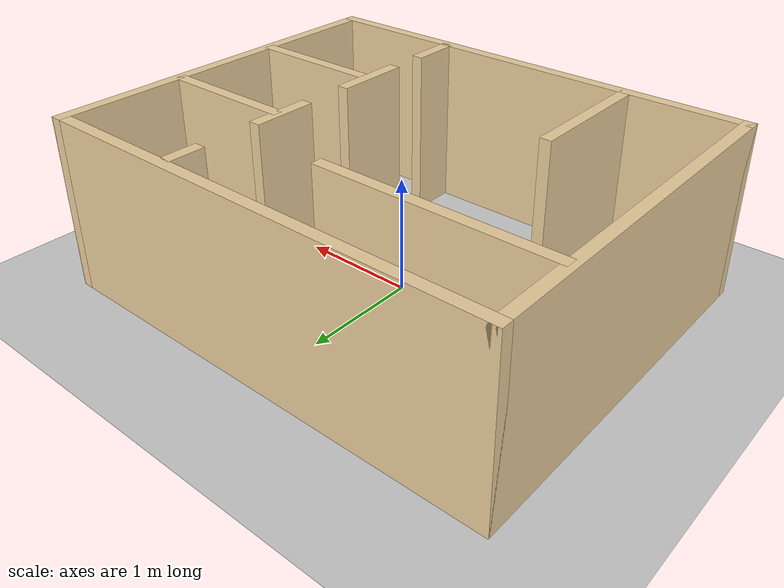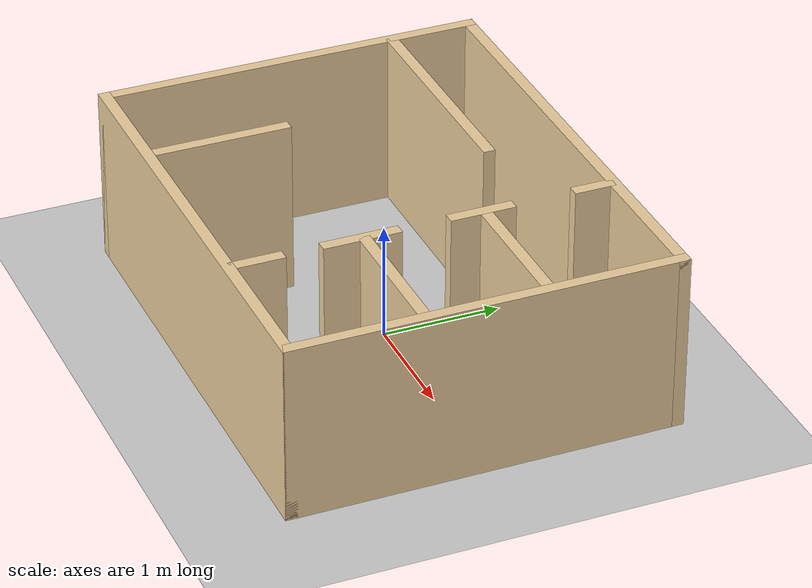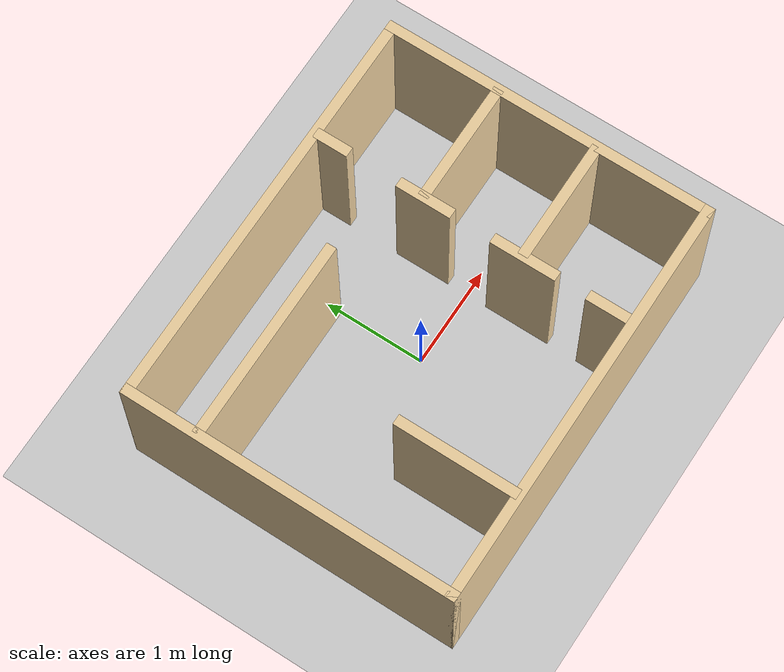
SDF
<?xml version="1.0"?>
<sdf version="1.8">
  <world name="maze_world">

    <plugin
      filename="gz-sim-physics-system"
      name="gz::sim::systems::Physics">
    </plugin>
    <plugin
      filename="gz-sim-user-commands-system"
      name="gz::sim::systems::UserCommands">
    </plugin>
    <plugin
      filename="gz-sim-scene-broadcaster-system"
      name="gz::sim::systems::SceneBroadcaster">
    </plugin>
    <plugin
      filename="gz-sim-sensors-system"
      name="gz::sim::systems::Sensors">
      <render_engine>ogre2</render_engine>
    </plugin>
    <plugin
      filename="gz-sim-imu-system"
      name="gz::sim::systems::Imu">
    </plugin>

    <physics type="ode">
      <real_time_update_rate>1000.0</real_time_update_rate>
      <max_step_size>0.001</max_step_size>
      <real_time_factor>1</real_time_factor>
      <ode>
        <solver>
          <type>quick</type>
          <iters>150</iters>
          <precon_iters>0</precon_iters>
          <sor>1.400000</sor>
          <use_dynamic_moi_rescaling>1</use_dynamic_moi_rescaling>
        </solver>
        <constraints>
          <cfm>0.00001</cfm>
          <erp>0.2</erp>
          <contact_max_correcting_vel>2000.000000</contact_max_correcting_vel>
          <contact_surface_layer>0.01000</contact_surface_layer>
        </constraints>
      </ode>
    </physics>

    <!-- The ground plane is written out here so the world starts with no network.
         The course maze generator wrote a Fuel include for it, which needs a download
         on the first run. -->
    <model name="ground_plane">
      <static>true</static>
      <link name="link">
        <collision name="collision">
          <geometry><plane><normal>0 0 1</normal><size>100 100</size></plane></geometry>
        </collision>
        <visual name="visual">
          <geometry><plane><normal>0 0 1</normal><size>100 100</size></plane></geometry>
          <material>
            <ambient>0.8 0.8 0.8 1</ambient>
            <diffuse>0.8 0.8 0.8 1</diffuse>
          </material>
        </visual>
      </link>
    </model>

    <model name="maze">
      <pose>0 0 0 0 0 0</pose>
		  <link name='Wall_0'>
		    <collision name='Wall_0_Collision'>
		      <geometry><box><size>4.1 0.1 1.5</size></box></geometry>
		      <pose>0 0 0.75 0 -0 0</pose>
		    </collision>
		    <visual name='Wall_0_Visual'>
		      <pose>0 0 0.75 0 -0 0</pose>
		      <geometry><box><size>4.1 0.1 1.5</size></box></geometry>
		      <material>
		        <diffuse>0.921569 0.807843 0.615686 1</diffuse>
		        <ambient>0.921569 0.807843 0.615686 1</ambient>
		      </material>
		    </visual>
		    <pose>0.0 1.6 0 0 -0 0</pose>
		  </link>
		  <link name='Wall_1'>
		    <collision name='Wall_1_Collision'>
		      <geometry><box><size>4.1 0.1 1.5</size></box></geometry>
		      <pose>0 0 0.75 0 -0 0</pose>
		    </collision>
		    <visual name='Wall_1_Visual'>
		      <pose>0 0 0.75 0 -0 0</pose>
		      <geometry><box><size>4.1 0.1 1.5</size></box></geometry>
		      <material>
		        <diffuse>0.921569 0.807843 0.615686 1</diffuse>
		        <ambient>0.921569 0.807843 0.615686 1</ambient>
		      </material>
		    </visual>
		    <pose>0.0 -1.6 0 0 -0 0</pose>
		  </link>
		  <link name='Wall_2'>
		    <collision name='Wall_2_Collision'>
		      <geometry><box><size>0.1 3.3 1.5</size></box></geometry>
		      <pose>0 0 0.75 0 -0 0</pose>
		    </collision>
		    <visual name='Wall_2_Visual'>
		      <pose>0 0 0.75 0 -0 0</pose>
		      <geometry><box><size>0.1 3.3 1.5</size></box></geometry>
		      <material>
		        <diffuse>0.921569 0.807843 0.615686 1</diffuse>
		        <ambient>0.921569 0.807843 0.615686 1</ambient>
		      </material>
		    </visual>
		    <pose>-2.0 0.0 0 0 -0 0</pose>
		  </link>
		  <link name='Wall_3'>
		    <collision name='Wall_3_Collision'>
		      <geometry><box><size>0.1 3.3 1.5</size></box></geometry>
		      <pose>0 0 0.75 0 -0 0</pose>
		    </collision>
		    <visual name='Wall_3_Visual'>
		      <pose>0 0 0.75 0 -0 0</pose>
		      <geometry><box><size>0.1 3.3 1.5</size></box></geometry>
		      <material>
		        <diffuse>0.921569 0.807843 0.615686 1</diffuse>
		        <ambient>0.921569 0.807843 0.615686 1</ambient>
		      </material>
		    </visual>
		    <pose>2.0 0.0 0 0 -0 0</pose>
		  </link>
		  <link name='Wall_4'>
		    <collision name='Wall_4_Collision'>
		      <geometry><box><size>0.1 0.45 1.5</size></box></geometry>
		      <pose>0 0 0.75 0 -0 0</pose>
		    </collision>
		    <visual name='Wall_4_Visual'>
		      <pose>0 0 0.75 0 -0 0</pose>
		      <geometry><box><size>0.1 0.45 1.5</size></box></geometry>
		      <material>
		        <diffuse>0.921569 0.807843 0.615686 1</diffuse>
		        <ambient>0.921569 0.807843 0.615686 1</ambient>
		      </material>
		    </visual>
		    <pose>0.8 -1.375 0 0 -0 0</pose>
		  </link>
		  <link name='Wall_5'>
		    <collision name='Wall_5_Collision'>
		      <geometry><box><size>0.1 0.65 1.5</size></box></geometry>
		      <pose>0 0 0.75 0 -0 0</pose>
		    </collision>
		    <visual name='Wall_5_Visual'>
		      <pose>0 0 0.75 0 -0 0</pose>
		      <geometry><box><size>0.1 0.65 1.5</size></box></geometry>
		      <material>
		        <diffuse>0.921569 0.807843 0.615686 1</diffuse>
		        <ambient>0.921569 0.807843 0.615686 1</ambient>
		      </material>
		    </visual>
		    <pose>0.8 -0.525 0 0 -0 0</pose>
		  </link>
		  <link name='Wall_6'>
		    <collision name='Wall_6_Collision'>
		      <geometry><box><size>0.1 0.55 1.5</size></box></geometry>
		      <pose>0 0 0.75 0 -0 0</pose>
		    </collision>
		    <visual name='Wall_6_Visual'>
		      <pose>0 0 0.75 0 -0 0</pose>
		      <geometry><box><size>0.1 0.55 1.5</size></box></geometry>
		      <material>
		        <diffuse>0.921569 0.807843 0.615686 1</diffuse>
		        <ambient>0.921569 0.807843 0.615686 1</ambient>
		      </material>
		    </visual>
		    <pose>0.8 0.475 0 0 -0 0</pose>
		  </link>
		  <link name='Wall_7'>
		    <collision name='Wall_7_Collision'>
		      <geometry><box><size>0.1 0.35 1.5</size></box></geometry>
		      <pose>0 0 0.75 0 -0 0</pose>
		    </collision>
		    <visual name='Wall_7_Visual'>
		      <pose>0 0 0.75 0 -0 0</pose>
		      <geometry><box><size>0.1 0.35 1.5</size></box></geometry>
		      <material>
		        <diffuse>0.921569 0.807843 0.615686 1</diffuse>
		        <ambient>0.921569 0.807843 0.615686 1</ambient>
		      </material>
		    </visual>
		    <pose>0.8 1.425 0 0 -0 0</pose>
		  </link>
		  <link name='Wall_8'>
		    <collision name='Wall_8_Collision'>
		      <geometry><box><size>1.2 0.1 1.5</size></box></geometry>
		      <pose>0 0 0.75 0 -0 0</pose>
		    </collision>
		    <visual name='Wall_8_Visual'>
		      <pose>0 0 0.75 0 -0 0</pose>
		      <geometry><box><size>1.2 0.1 1.5</size></box></geometry>
		      <material>
		        <diffuse>0.921569 0.807843 0.615686 1</diffuse>
		        <ambient>0.921569 0.807843 0.615686 1</ambient>
		      </material>
		    </visual>
		    <pose>1.4 0.5 0 0 -0 0</pose>
		  </link>
		  <link name='Wall_9'>
		    <collision name='Wall_9_Collision'>
		      <geometry><box><size>1.2 0.1 1.5</size></box></geometry>
		      <pose>0 0 0.75 0 -0 0</pose>
		    </collision>
		    <visual name='Wall_9_Visual'>
		      <pose>0 0 0.75 0 -0 0</pose>
		      <geometry><box><size>1.2 0.1 1.5</size></box></geometry>
		      <material>
		        <diffuse>0.921569 0.807843 0.615686 1</diffuse>
		        <ambient>0.921569 0.807843 0.615686 1</ambient>
		      </material>
		    </visual>
		    <pose>1.4 -0.5 0 0 -0 0</pose>
		  </link>
		  <link name='Wall_10'>
		    <collision name='Wall_10_Collision'>
		      <geometry><box><size>2.0 0.1 1.5</size></box></geometry>
		      <pose>0 0 0.75 0 -0 0</pose>
		    </collision>
		    <visual name='Wall_10_Visual'>
		      <pose>0 0 0.75 0 -0 0</pose>
		      <geometry><box><size>2.0 0.1 1.5</size></box></geometry>
		      <material>
		        <diffuse>0.921569 0.807843 0.615686 1</diffuse>
		        <ambient>0.921569 0.807843 0.615686 1</ambient>
		      </material>
		    </visual>
		    <pose>-1.0 0.9 0 0 -0 0</pose>
		  </link>
		  <link name='Wall_11'>
		    <collision name='Wall_11_Collision'>
		      <geometry><box><size>0.1 1.2 1.5</size></box></geometry>
		      <pose>0 0 0.75 0 -0 0</pose>
		    </collision>
		    <visual name='Wall_11_Visual'>
		      <pose>0 0 0.75 0 -0 0</pose>
		      <geometry><box><size>0.1 1.2 1.5</size></box></geometry>
		      <material>
		        <diffuse>0.921569 0.807843 0.615686 1</diffuse>
		        <ambient>0.921569 0.807843 0.615686 1</ambient>
		      </material>
		    </visual>
		    <pose>-1.0 -1.0 0 0 -0 0</pose>
		  </link>
              <static>1</static>
    </model>

    <light type="directional" name="sun">
      <cast_shadows>false</cast_shadows>
      <pose>0 0 10 0 0 0</pose>
      <diffuse>0.8 0.8 0.8 1</diffuse>
      <specular>0.2 0.2 0.2 1</specular>
      <attenuation>
        <range>1000</range>
        <constant>0.9</constant>
        <linear>0.01</linear>
        <quadratic>0.001</quadratic>
      </attenuation>
      <direction>-0.5 0.1 -0.9</direction>
    </light>

  </world>
</sdf>
